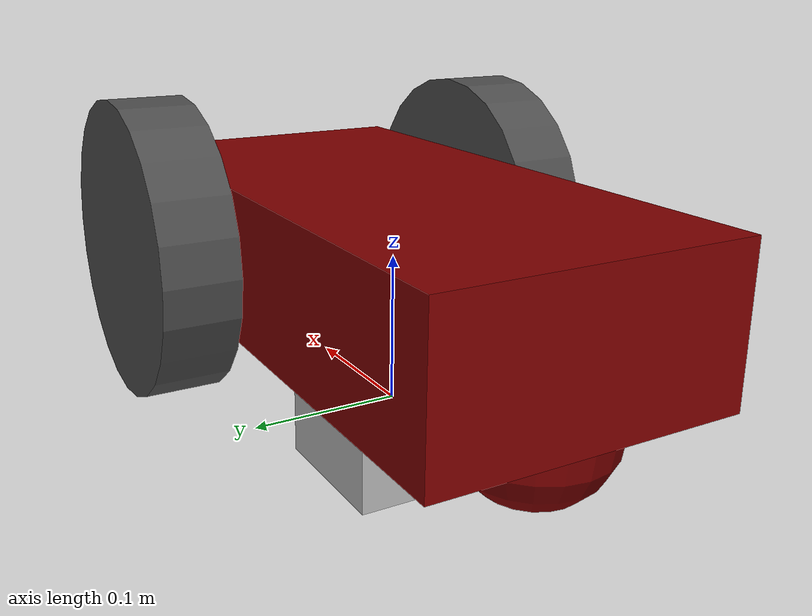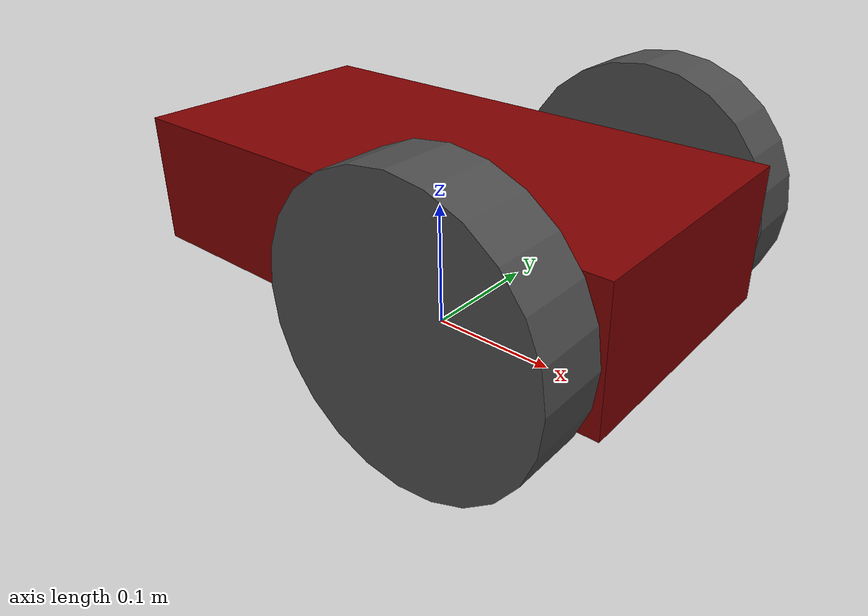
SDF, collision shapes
<?xml version='1.0'?>
<sdf version='1.4'>
  <model name="syscon_bot">
          <static>false</static>
<!-- model will be ignored by the physics engine and the model will stay in one place  -->

<!-- ############# robot chassis with castor ##################### -->
<link name='chassis'>
    <pose>0 0 0.1 0 0 0</pose>
	<inertial>
 	    <mass>10.0</mass>
 	    <pose>0.0 0 0.1 0 0 0</pose>
 	    <inertia>
 	        <ixx>0.5</ixx>
        	<iyy>1.0</iyy>
 	        <izz>0.1</izz>
 	    </inertia>
 	</inertial>

    <collision name='collision'>
        <geometry>
            <box>
               <size>.4 .2 .1</size>
            </box>
        </geometry>
    </collision>

    <visual name='visual'>
         <geometry>
             <box>
                 <size>.4 .2 .1</size>
             </box>
         </geometry>
	     <material>
   		    <ambient>0.8 0 0 1</ambient>
    		<diffuse> 0.5 0 0 1</diffuse>
    		<specular>0.1 0.1 0.1 1</specular>
    		<emissive>0 0 0 0</emissive>
  	     </material>
    </visual>

      <collision name='caster_collision'>
        <pose>-0.15 0 -0.05 0 0 0</pose>
         <geometry>
              <sphere>
                    <radius>.05</radius>
              </sphere>
         </geometry>

            <surface>
              <friction>
                <ode>
                  <mu>0</mu>
                  <mu2>0</mu2>
                  <slip1>0.0</slip1>
                  <slip2>0.0</slip2>
                </ode>
              </friction>
            </surface>
      </collision>

    <visual name='caster_visual'>
            <pose>-0.15 0 -0.05 0 0 0</pose>
            <geometry>
              <sphere>
                <radius>.05</radius>
              </sphere>
            </geometry>
	    <material>
   		 <ambient>0.1 0.1 0.1 1</ambient>
    		<diffuse>0.3 0.3 0.3 1</diffuse>
    		<specular>0.3 0.3 0.3 1</specular>
    		<emissive>0 0 0 0</emissive>
  	    </material>

    </visual>
</link>

<link name="left_wheel">
        <pose>0.1 0.13 0.1 0 1.5707 1.5707</pose>

        <collision name="collision">
          <geometry>
            <cylinder>
              <radius>.1</radius>
              <length>.05</length>
            </cylinder>
          </geometry>
	<surface>
              <friction>
                <ode>
                  <mu>0.4</mu>
                  <mu2>0.2</mu2>
                  <slip1>0.0</slip1>
                  <slip2>0.0</slip2>
                </ode>
              </friction>
            </surface>
        </collision>

       <visual name="visual">
          <geometry>
            <cylinder>
              <radius>.1</radius>
              <length>.05</length>
            </cylinder>
          </geometry>
	<material>
   		 <ambient>0.1 0.1 0.1 1</ambient>
    		<diffuse>0.3 0.3 0.3 1</diffuse>
    		<specular>0.3 0.3 0.3 1</specular>
    		<emissive>0 0 0 0</emissive>
  	</material>
        </visual>
</link>

<!-- ###################### Right wheel  description ########-->

<link name="right_wheel">
        <pose>0.1 -0.13 0.1 0 1.5707 1.5707</pose>

        <collision name="collision">
          <geometry>
            <cylinder>
              <radius>.1</radius>
              <length>.05</length>
            </cylinder>
          </geometry>
	<surface>
              <friction>
                <ode>
                  <mu>0.4</mu>
                  <mu2>0.2</mu2>
                  <slip1>0.0</slip1>
                  <slip2>0.0</slip2>
                </ode>
              </friction>
            </surface>
        </collision>

       <visual name="visual">
          <geometry>
            <cylinder>
              <radius>.1</radius>
              <length>.05</length>
            </cylinder>
          </geometry>
        <material>
   		 <ambient>0.1 0.1 0.1 1</ambient>
    		<diffuse>0.3 0.3 0.3 1</diffuse>
    		<specular>0.3 0.3 0.3 1</specular>
    		<emissive>0 0 0 0</emissive>
  	</material>
        </visual>

</link>

<link name="hokuyo">
    <collision name="collision">
      <pose>0 0 0 0 0 0</pose>
      <geometry>
            <box>
            <size> 0.1 0.1 0.1 </size>
            </box>
      </geometry>
    </collision>

    <visual name='hokuyo visual'>
      <pose>0 0 0 0 0 0 </pose>
      <geometry>
        <mesh filename="package://mybot_description/meshes/hokuyo.dae"/>
      </geometry>
    </visual>

   <inertial>
      <mass>1e-5</mass>
      <pose> 0 0 0 0 0 0 </pose>
      <inertia>
       <ixx>1e-6</ixx>
       <ixy>0</ixy>
       <ixz>0</ixz>
        <iyy>1e-6</iyy>
        <iyz>0</iyz>
         <izz>1e-6</izz>
        </inertia>
    </inertial>
 </link>
<!-- ################ Joint Description for wheels ##########-->

      <joint type="revolute" name="left_wheel_hinge">
        <pose>0 0 -0.03 0 0 0</pose>
        <child>left_wheel</child>
        <parent>chassis</parent>
        <axis>
          <xyz>0 1 0</xyz>
        </axis>
      </joint>

      <joint type="revolute" name="right_wheel_hinge">
        <pose>0 0 0.03 0 0 0</pose>
        <child>right_wheel</child>
        <parent>chassis</parent>
        <axis>
          <xyz>0 1 0</xyz>
        </axis>
      </joint>

      <joint  type="fixed" name="hokuyo_joint">
    	<axis xyz="0 1 0" />
    	<origin xyz=".15 0 .1" rpy="0 0 0"/>
    	<parent link="chassis"/>
    	<child link="hokuyo"/>
     </joint>

<plugin name="differential_drive_controller" filename="libgazebo_ros_diff_drive.so">
 <alwaysOn>true</alwaysOn>
 <updateRate>20</updateRate>
 <leftJoint>left_wheel_hinge</leftJoint>
 <rightJoint>right_wheel_hinge</rightJoint>
 <wheelSeparation>0.2</wheelSeparation>
 <wheelDiameter>0.2</wheelDiameter>
 <torque>500</torque>
 <commandTopic>cmd_vel</commandTopic>
 <odometryTopic>odom</odometryTopic>
 <odometryFrame>odom</odometryFrame>
 <robotBaseFrame>base_footprint</robotBaseFrame>
 </plugin>

  </model>
</sdf>
